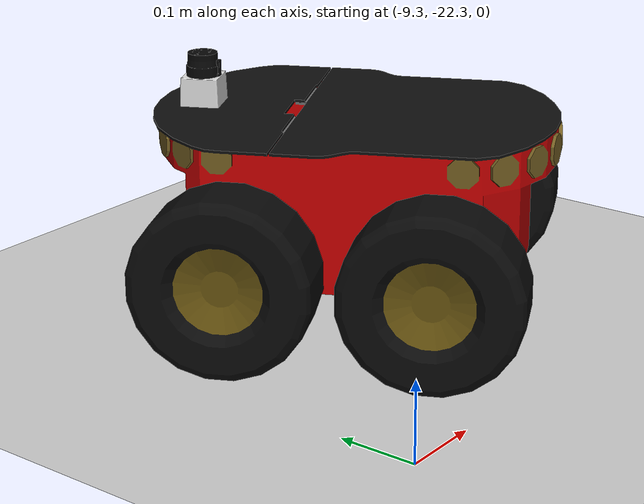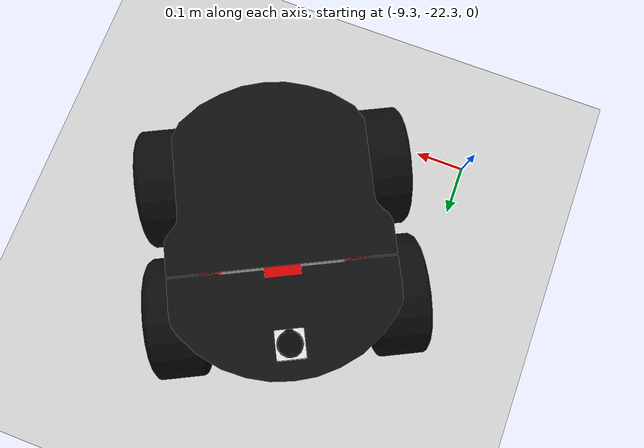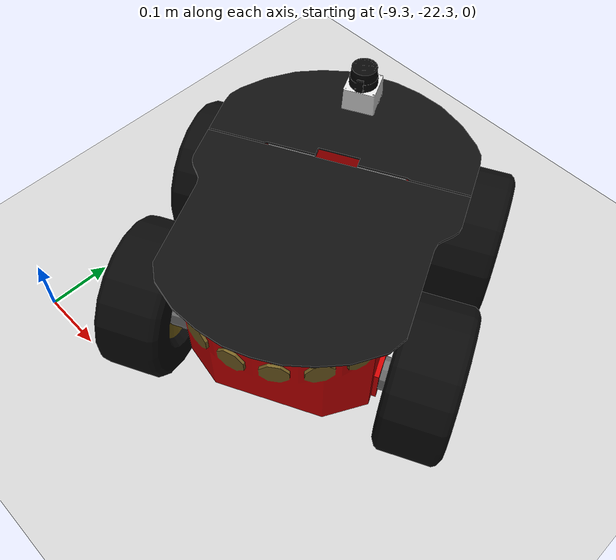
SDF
<sdf version="1.4">
 <world name="default">
  <light name="sun" type="directional">
   <pose>0.000000 0.000000 10.000000 0.000000 0.000000 0.000000</pose>
   <diffuse>0.800000 0.800000 0.800000 1.000000</diffuse>
   <specular>0.100000 0.100000 0.100000 1.000000</specular>
   <attenuation>
    <range>1000.000000</range>
    <constant>0.900000</constant>
    <linear>0.010000</linear>
    <quadratic>0.001000</quadratic>
   </attenuation>
   <direction>-0.500000 0.500000 -1.000000</direction>
  </light>
  <model name="ground_plane">
   <static>1</static>
   <link name="link">
    <collision name="collision">
     <geometry>
      <plane><normal>0.000000 0.000000 1.000000</normal><size>100.000000 100.000000</size></plane>
     </geometry>
     <surface><friction><ode><mu>100.000000</mu><mu2>50.000000</mu2></ode></friction></surface>
    </collision>
    <visual name="visual">
     <cast_shadows>0</cast_shadows>
     <geometry>
      <plane><normal>0.000000 0.000000 1.000000</normal><size>100.000000 100.000000</size></plane>
     </geometry>
     <material>
      <script><uri>file://media/materials/scripts/gazebo.material</uri><name>Gazebo/Grey</name></script>
     </material>
    </visual>
    <velocity_decay><linear>0.000000</linear><angular>0.000000</angular></velocity_decay>
   </link>
  </model>
  <physics type="ode">
   <gravity>0.000000 0.000000 -9.800000</gravity>
   <real_time_update_rate>1000.000000</real_time_update_rate>
  </physics>
  <scene>
   <ambient>0.200000 0.200000 0.200000 1.000000</ambient>
   <background>0.700000 0.700000 0.700000 1.000000</background>
   <shadows>1</shadows>
  </scene>
  <model name="Pioneer3AT">
   <pose>-9.00000 -22.00000 0.1720000 0.000000 0.000000 90.00000</pose>
   <static>0</static>
   <link name="chassis">
    <inertial>
     <mass>14.000000</mass>
     <inertia>
      <ixx>0.333800</ixx>
      <ixy>0.000000</ixy>
      <ixz>0.000000</ixz>
      <iyy>0.478300</iyy>
      <iyz>0.000000</iyz>
      <izz>0.333800</izz>
     </inertia>
    </inertial>
    <collision name="collision">
     <geometry><box><size>0.501000 0.400000 0.190000</size></box></geometry>
    </collision>
    <visual name="visual">
     <geometry><mesh><uri>model://pioneer3at/meshes/chassis.dae</uri></mesh></geometry>
    </visual>
    <velocity_decay><linear>0.000000</linear><angular>0.000000</angular></velocity_decay>
   </link>
   <link name="right_front_wheel">
    <pose>0.125000 -0.201000 -0.060000 1.570700 0.000000 0.000000</pose>
    <collision name="collision">
     <geometry><cylinder><radius>0.110000</radius><length>0.075000</length></cylinder></geometry>
     <surface>
      <friction>
       <ode><mu>1.000000</mu><mu2>1.000000</mu2><slip1>0.500000</slip1><slip2>0.000000</slip2></ode>
      </friction>
     </surface>
    </collision>
    <visual name="visual">
     <geometry><mesh><uri>model://pioneer3at/meshes/wheel.dae</uri></mesh></geometry>
    </visual>
    <velocity_decay><linear>0.000000</linear><angular>0.000000</angular></velocity_decay>
    <inertial>
     <inertia>
      <ixx>1.000000</ixx>
      <ixy>0.000000</ixy>
      <ixz>0.000000</ixz>
      <iyy>1.000000</iyy>
      <iyz>0.000000</iyz>
      <izz>1.000000</izz>
     </inertia>
     <mass>1.000000</mass>
    </inertial>
   </link>
   <link name="left_front_wheel">
    <pose>0.125000 0.201000 -0.060000 1.570700 0.000000 0.000000</pose>
    <collision name="collision">
     <geometry><cylinder><radius>0.110000</radius><length>0.075000</length></cylinder></geometry>
     <surface>
      <friction>
       <ode><mu>1.000000</mu><mu2>1.000000</mu2><slip1>0.500000</slip1><slip2>0.000000</slip2></ode>
      </friction>
     </surface>
    </collision>
    <visual name="visual">
     <geometry><mesh><uri>model://pioneer3at/meshes/wheel.dae</uri></mesh></geometry>
    </visual>
    <velocity_decay><linear>0.000000</linear><angular>0.000000</angular></velocity_decay>
    <inertial>
     <inertia>
      <ixx>1.000000</ixx>
      <ixy>0.000000</ixy>
      <ixz>0.000000</ixz>
      <iyy>1.000000</iyy>
      <iyz>0.000000</iyz>
      <izz>1.000000</izz>
     </inertia>
     <mass>1.000000</mass>
    </inertial>
   </link>
   <link name="right_rear_wheel">
    <pose>-0.125000 -0.201000 -0.060000 1.570700 0.000000 0.000000</pose>
    <collision name="collision">
     <geometry><cylinder><radius>0.110000</radius><length>0.075000</length></cylinder></geometry>
     <surface>
      <friction>
       <ode><mu>1.000000</mu><mu2>1.000000</mu2><slip1>0.500000</slip1><slip2>0.000000</slip2></ode>
      </friction>
     </surface>
    </collision>
    <visual name="visual">
     <geometry><mesh><uri>model://pioneer3at/meshes/wheel.dae</uri></mesh></geometry>
    </visual>
    <velocity_decay><linear>0.000000</linear><angular>0.000000</angular></velocity_decay>
    <inertial>
     <inertia>
      <ixx>1.000000</ixx>
      <ixy>0.000000</ixy>
      <ixz>0.000000</ixz>
      <iyy>1.000000</iyy>
      <iyz>0.000000</iyz>
      <izz>1.000000</izz>
     </inertia>
     <mass>1.000000</mass>
    </inertial>
   </link>
   <link name="left_rear_wheel">
    <pose>-0.125000 0.201000 -0.060000 1.570700 0.000000 0.000000</pose>
    <collision name="collision">
     <geometry><cylinder><radius>0.110000</radius><length>0.075000</length></cylinder></geometry>
     <surface>
      <friction>
       <ode><mu>1.000000</mu><mu2>1.000000</mu2><slip1>0.500000</slip1><slip2>0.000000</slip2></ode>
      </friction>
     </surface>
    </collision>
    <visual name="visual">
     <geometry><mesh><uri>model://pioneer3at/meshes/wheel.dae</uri></mesh></geometry>
    </visual>
    <velocity_decay><linear>0.000000</linear><angular>0.000000</angular></velocity_decay>
    <inertial>
     <inertia>
      <ixx>1.000000</ixx>
      <ixy>0.000000</ixy>
      <ixz>0.000000</ixz>
      <iyy>1.000000</iyy>
      <iyz>0.000000</iyz>
      <izz>1.000000</izz>
     </inertia>
     <mass>1.000000</mass>
    </inertial>
   </link>
   <joint name="right_front" type="revolute">
    <child>right_front_wheel</child>
    <parent>chassis</parent>
    <axis>
     <xyz>0.000000 1.000000 0.000000</xyz>
     <limit><lower>-10000000000000000.000000</lower><upper>10000000000000000.000000</upper></limit>
    </axis>
   </joint>
   <joint name="right_rear" type="revolute">
    <child>right_rear_wheel</child>
    <parent>chassis</parent>
    <axis>
     <xyz>0.000000 1.000000 0.000000</xyz>
     <limit><lower>-10000000000000000.000000</lower><upper>10000000000000000.000000</upper></limit>
    </axis>
   </joint>
   <joint name="left_front" type="revolute">
    <child>left_front_wheel</child>
    <parent>chassis</parent>
    <axis>
     <xyz>0.000000 1.000000 0.000000</xyz>
     <limit><lower>-10000000000000000.000000</lower><upper>10000000000000000.000000</upper></limit>
    </axis>
   </joint>
   <joint name="left_rear" type="revolute">
    <child>left_rear_wheel</child>
    <parent>chassis</parent>
    <axis>
     <xyz>0.000000 1.000000 0.000000</xyz>
     <limit><lower>-10000000000000000.000000</lower><upper>10000000000000000.000000</upper></limit>
    </axis>
   </joint>
   <link name="hokuyo::link">
    <inertial>
     <mass>0.100000</mass>
     <inertia>
      <ixx>1.000000</ixx>
      <ixy>0.000000</ixy>
      <ixz>0.000000</ixz>
      <iyy>1.000000</iyy>
      <iyz>0.000000</iyz>
      <izz>1.000000</izz>
     </inertia>
    </inertial>
    <visual name="visual"><geometry><mesh><uri>model://hokuyo/meshes/hokuyo.dae</uri></mesh></geometry></visual>
    <collision name="collision-base">
     <pose>0.000000 0.000000 -0.014500 0.000000 0.000000 0.000000</pose>
     <geometry><box><size>0.050000 0.050000 0.041000</size></box></geometry>
    </collision>
    <collision name="collision-top">
     <pose>0.000000 0.000000 0.020500 0.000000 0.000000 0.000000</pose>
     <geometry><cylinder><radius>0.021000</radius><length>0.029000</length></cylinder></geometry>
    </collision>
    <sensor name="laser" type="ray">
     <pose>0.010000 0.000000 0.017500 0.000000 0.000000 0.000000</pose>
     <ray>
      <scan>
       <horizontal>
        <samples>640</samples>
        <resolution>1.000000</resolution>
        <min_angle>-2.268890</min_angle>
        <max_angle>2.268899</max_angle>
       </horizontal>
      </scan>
      <range><min>0.080000</min><max>10.000000</max><resolution>0.010000</resolution></range>
     </ray>
     <plugin name="laser" filename="libRayPlugin.so"/>
     <always_on>1</always_on>
     <update_rate>30.000000</update_rate>
     <visualize>1</visualize>
    </sensor>
    <velocity_decay><linear>0.000000</linear><angular>0.000000</angular></velocity_decay>
    <pose>0.200000 0.000000 0.130000 0.000000 0.000000 0.000000</pose>
   </link>
   <joint name="hokuyo_joint" type="revolute">
    <child>hokuyo::link</child>
    <parent>chassis</parent>
    <axis>
     <xyz>0.000000 0.000000 1.000000</xyz>
     <limit><upper>0.000000</upper><lower>0.000000</lower></limit>
    </axis>
   </joint>
   <plugin name="SkidSteerDrivePlugin" filename="libSkidSteerDrivePlugin.so"/>
  </model>
 </world>
</sdf>
